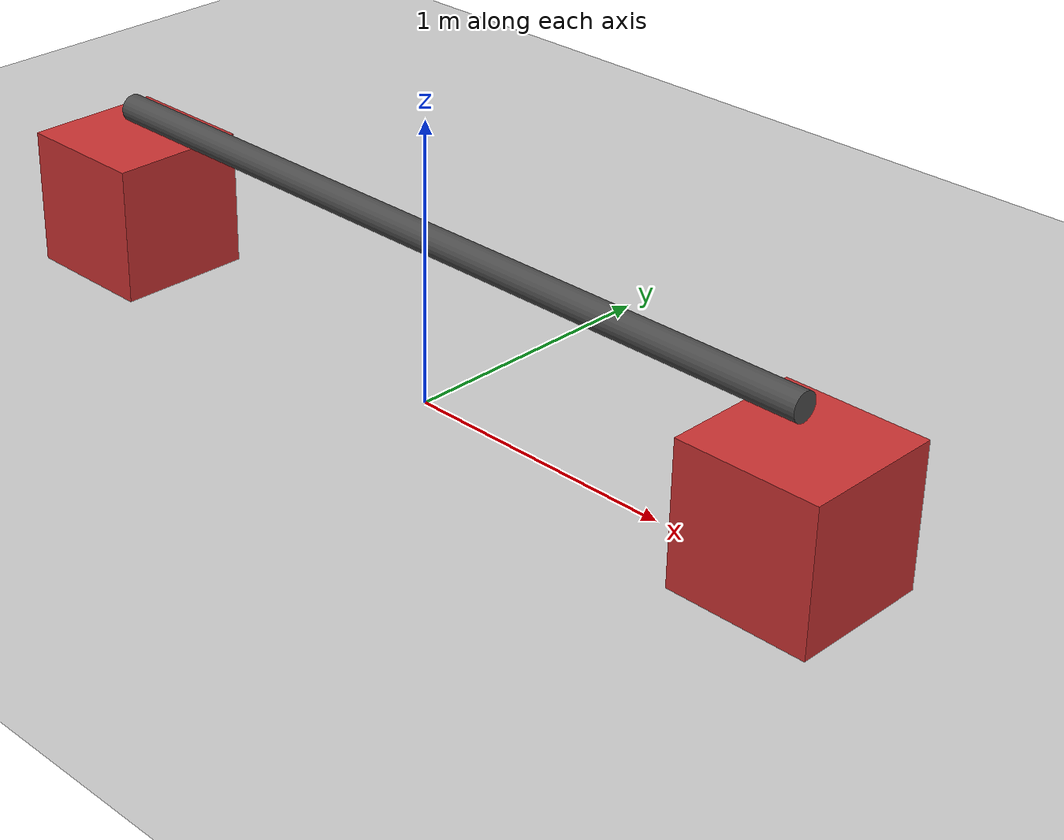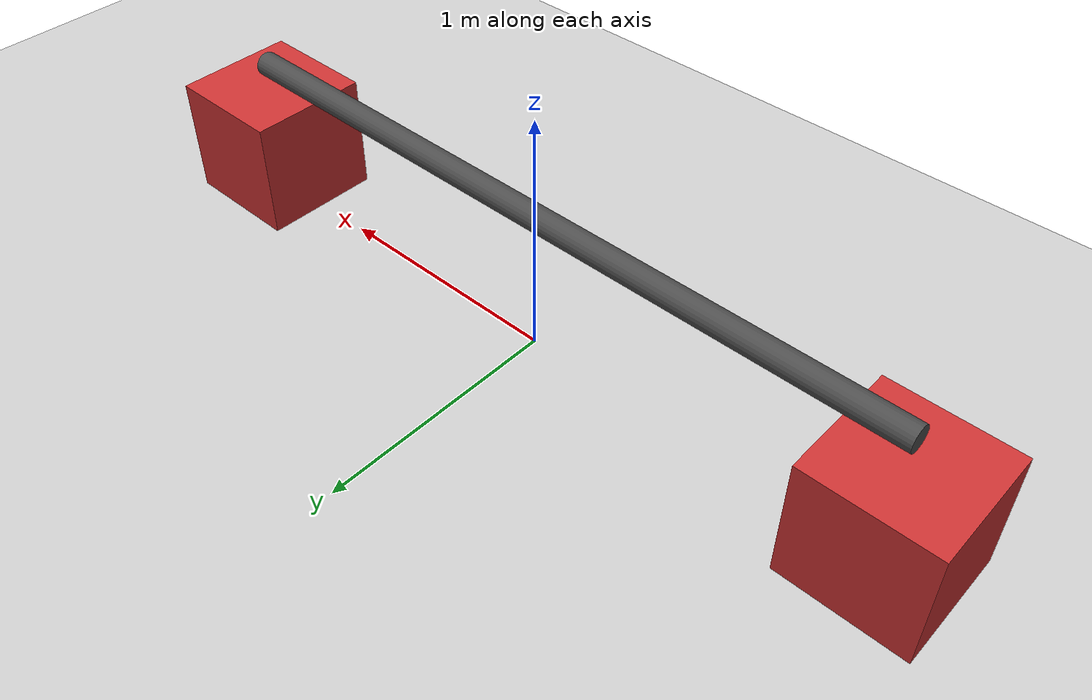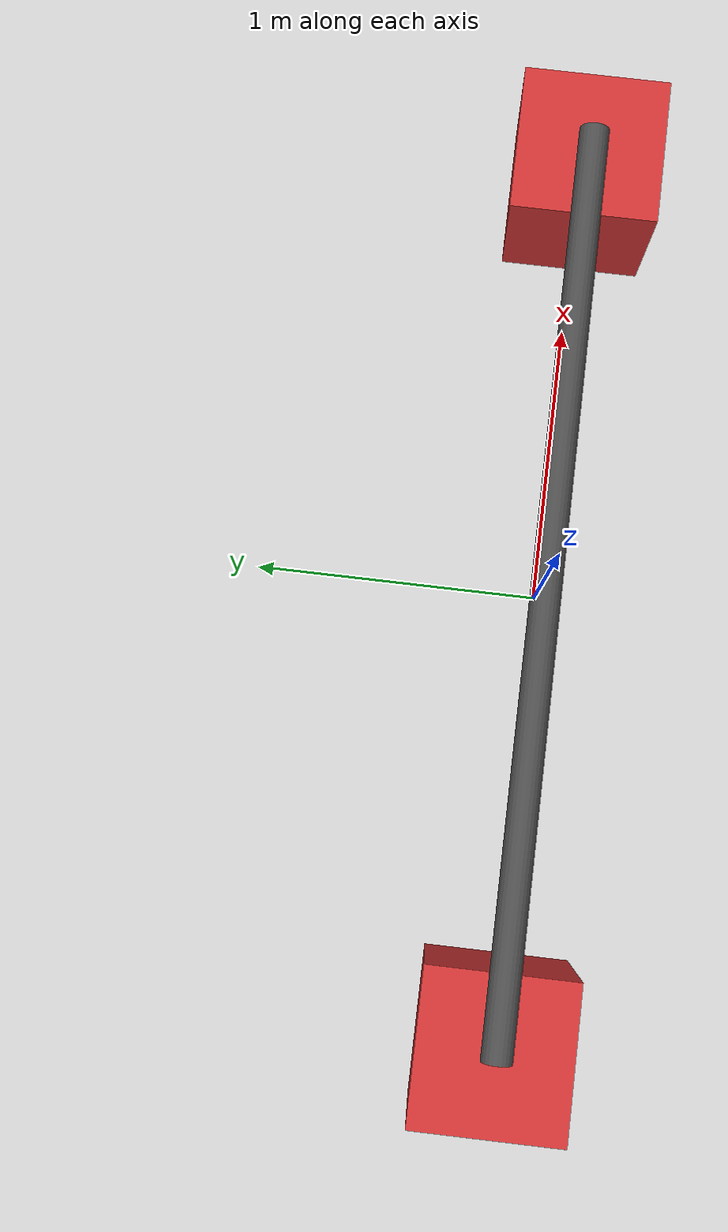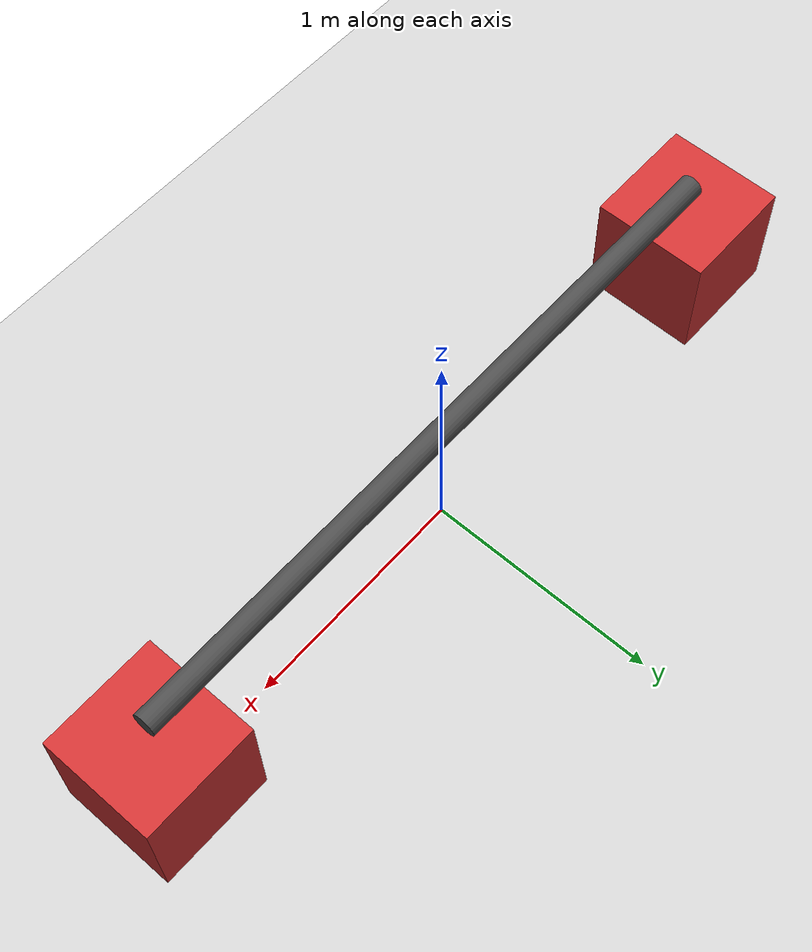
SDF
<?xml version="1.0" ?>
<sdf version="1.6">
  <world name="pipe_world">
    <include>
      <uri>model://ground_plane</uri>
    </include>

    <include>
      <uri>model://sun</uri>
    </include>

    <include>
  <uri>model://block</uri>
  <name>block_left</name>
  <pose>-1.5 0 0.25 0 0 0</pose>
</include>

<include>
  <uri>model://block</uri>
  <name>block_right</name>
  <pose>1.5 0 0.25 0 0 0</pose>
</include>

    <!-- Pipe -->
    <include>
      <uri>model://pipe</uri>
      <name>balancing_pipe</name>
      <pose>0 0 0.6 0 1.5708 0</pose> <!-- Rotate to lay horizontally on Y axis -->
    </include>
  </world>
</sdf>

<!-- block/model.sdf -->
<sdf version="1.6">
  <model name="block">
    <static>true</static>
    <link name="block_link">
      <collision name="block_collision">
        <geometry>
          <box>
            <size>0.5 0.5 0.5</size>
          </box>
        </geometry>
      </collision>
      <visual name="block_visual">
        <geometry>
          <box>
            <size>0.5 0.5 0.5</size>
          </box>
        </geometry>
        <material>
          <ambient>0.8 0.2 0.2 1</ambient>
        </material>
      </visual>
    </link>
  </model>
</sdf>

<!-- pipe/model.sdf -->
<sdf version="1.6">
  <model name="pipe">
    <static>false</static>
    <link name="pipe_link">
      <collision name="pipe_collision">
        <geometry>
          <cylinder>
            <radius>0.05</radius>
            <length>3.0</length>
          </cylinder>
        </geometry>
      </collision>
      <visual name="pipe_visual">
        <geometry>
          <cylinder>
            <radius>0.05</radius>
            <length>3.0</length>
          </cylinder>
        </geometry>
        <material>
          <ambient>0.3 0.3 0.3 1</ambient>
        </material>
      </visual>
    </link>
  </model>
</sdf>
